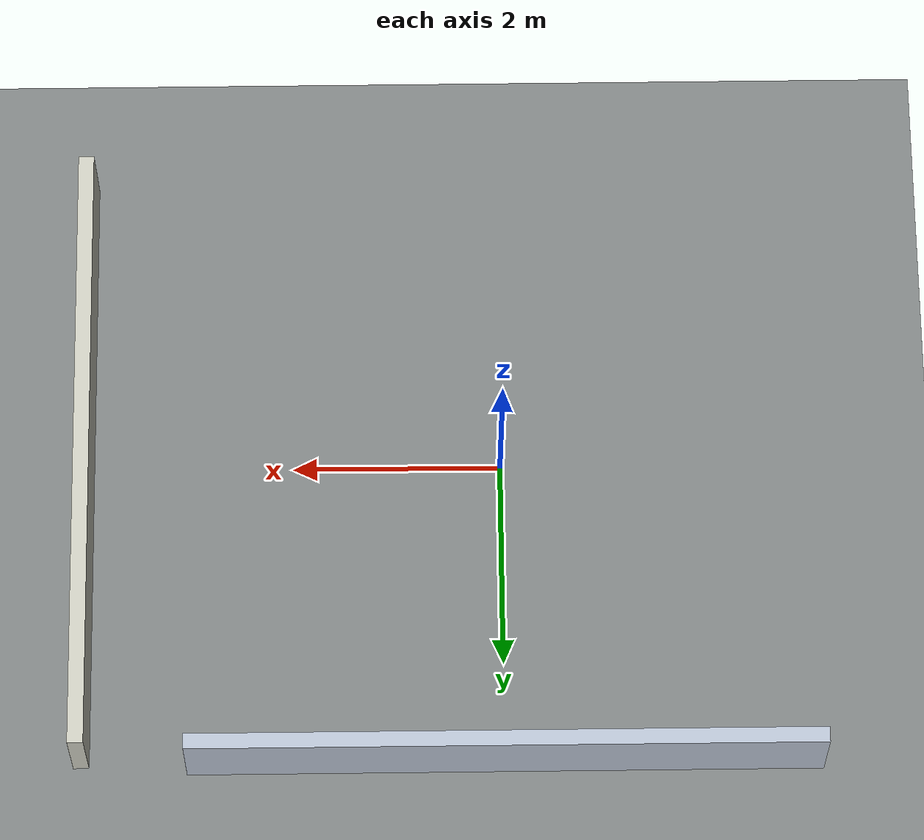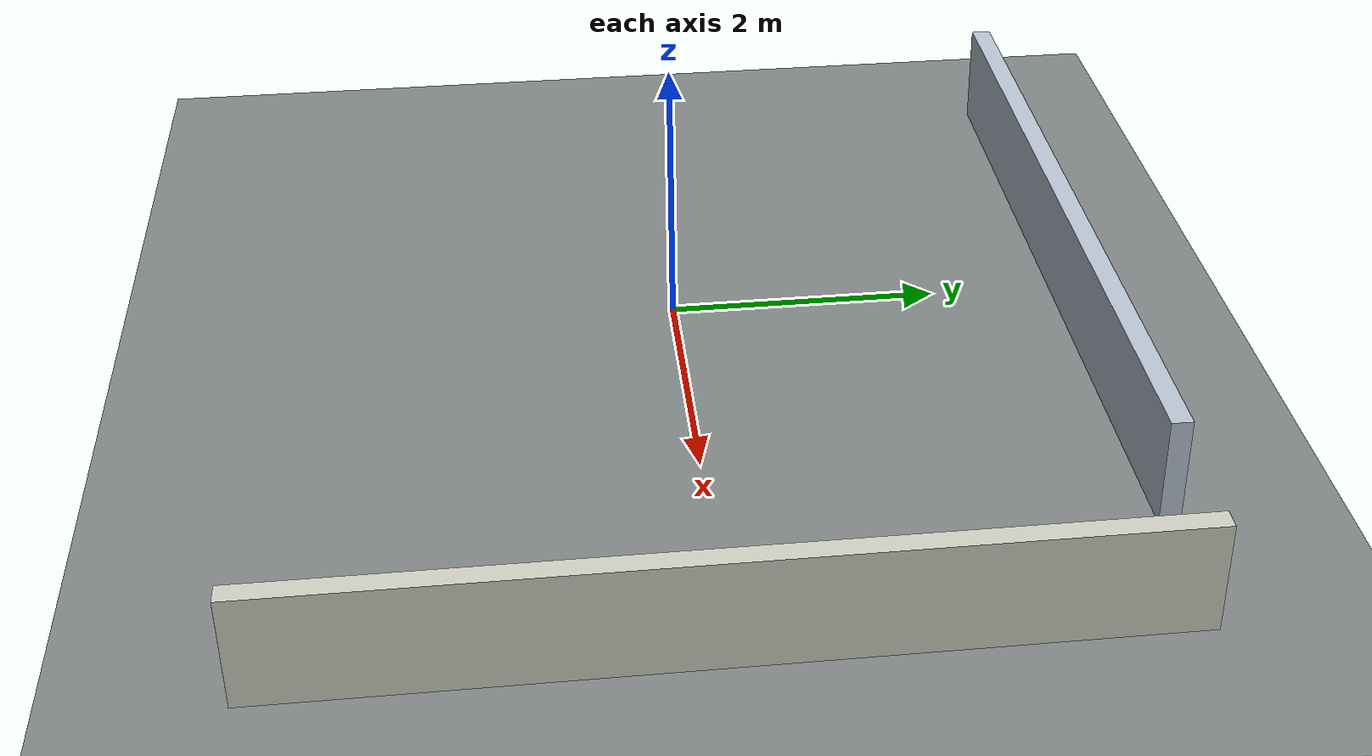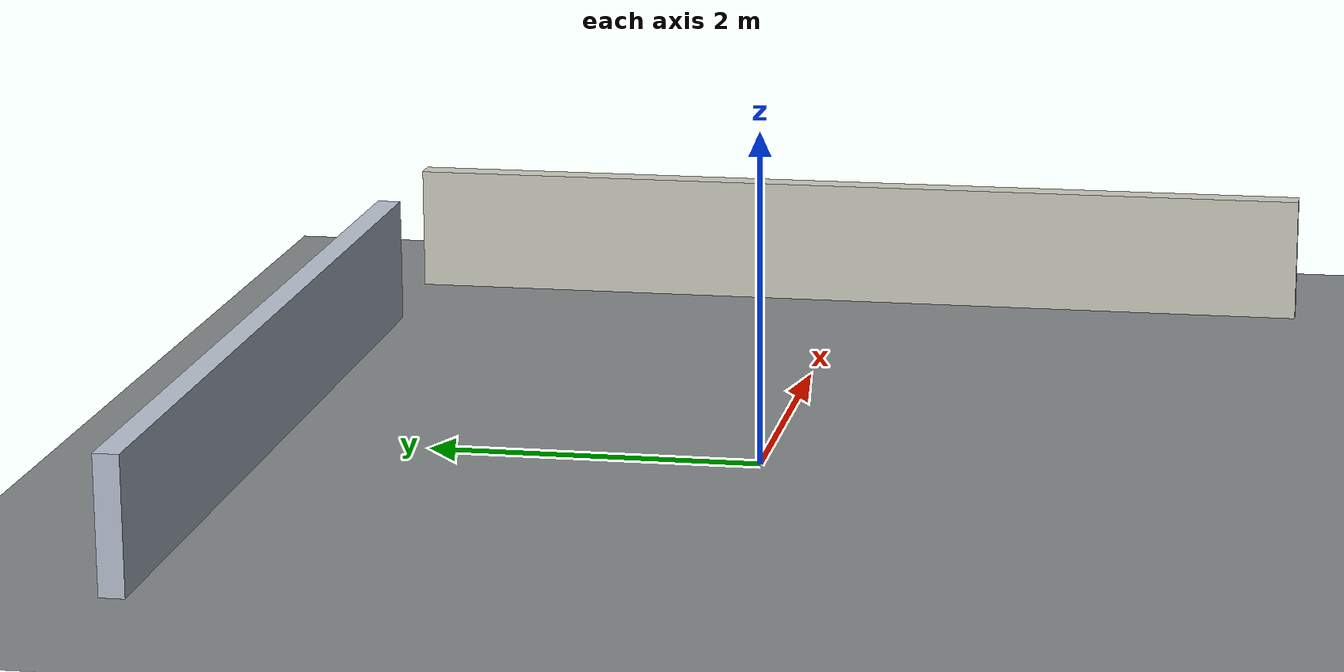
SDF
<?xml version="1.0"?>
<sdf version="1.9">
  <world name="default">
    <gravity>0 0 -9.8</gravity>
    <plugin filename="gz-sim-physics-system" name="gz::sim::systems::Physics" />
    <plugin filename="gz-sim-user-commands-system" name="gz::sim::systems::UserCommands" />
    <plugin filename="gz-sim-scene-broadcaster-system" name="gz::sim::systems::SceneBroadcaster" />
    <plugin filename="gz-sim-imu-system" name="gz::sim::systems::Imu" />
    <plugin filename="gz-sim-sensors-system" name="gz::sim::systems::Sensors">
      <render_engine>ogre2</render_engine>
    </plugin>
    <physics name="default_physics" type="ode">
      <max_step_size>0.001</max_step_size>
      <real_time_factor>1.0</real_time_factor>
      <real_time_update_rate>1000</real_time_update_rate>
    </physics>
    <scene>
      <ambient>0.45 0.45 0.45 1</ambient>
      <background>0.70 0.76 0.84 1</background>
      <shadows>true</shadows>
    </scene>
    <light name="sun" type="directional">
      <cast_shadows>true</cast_shadows>
      <pose>0 0 10 0 0 0</pose>
      <diffuse>0.8 0.8 0.8 1</diffuse>
      <specular>0.2 0.2 0.2 1</specular>
      <attenuation>
        <range>1000</range>
        <constant>0.9</constant>
        <linear>0.01</linear>
        <quadratic>0.001</quadratic>
      </attenuation>
      <direction>-0.5 0.1 -0.9</direction>
    </light>
    <model name="ground_plane">
      <static>true</static>
      <link name="link">
        <collision name="collision">
          <geometry>
            <plane>
              <normal>0 0 1</normal>
              <size>60 60</size>
            </plane>
          </geometry>
          <surface>
            <friction>
              <ode>
                <mu>1.0</mu>
                <mu2>1.0</mu2>
              </ode>
            </friction>
          </surface>
        </collision>
        <visual name="visual">
          <geometry>
            <plane>
              <normal>0 0 1</normal>
              <size>60 60</size>
            </plane>
          </geometry>
          <material>
            <diffuse>0.50 0.52 0.52 1</diffuse>
            <ambient>0.50 0.52 0.52 1</ambient>
          </material>
        </visual>
      </link>
    </model>
    <model name="test_wall_north">
      <static>true</static>
      <pose>4 0 0.4 0 0 0</pose>
      <link name="link">
        <collision name="collision">
          <geometry><box><size>0.15 6.0 0.8</size></box></geometry>
        </collision>
        <visual name="visual">
          <geometry><box><size>0.15 6.0 0.8</size></box></geometry>
          <material><diffuse>0.8 0.8 0.75 1</diffuse></material>
        </visual>
      </link>
    </model>
    <model name="test_wall_west">
      <static>true</static>
      <pose>0 3 0.4 0 0 1.57079632679</pose>
      <link name="link">
        <collision name="collision">
          <geometry><box><size>0.15 6.0 0.8</size></box></geometry>
        </collision>
        <visual name="visual">
          <geometry><box><size>0.15 6.0 0.8</size></box></geometry>
          <material><diffuse>0.72 0.76 0.82 1</diffuse></material>
        </visual>
      </link>
    </model>
  </world>
</sdf>
